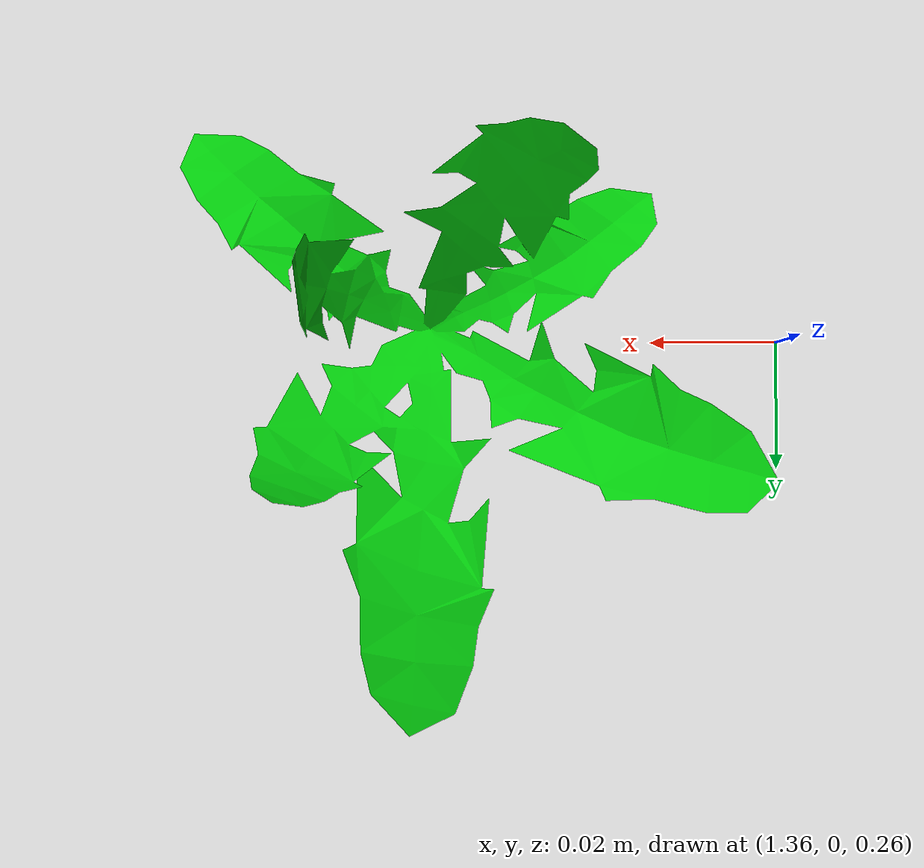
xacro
<robot name="robot">
  <link name="rowcrop_Small Plant.005_link">
    <inertial>
      <origin xyz="0 0 0" rpy="0 0 0" />
      <mass value="1" />
      <inertia ixx="1" ixy="0" ixz="0" iyy="1" iyz="0" izz="1" />
    </inertial>
    <visual>
      <origin xyz="0 0 0" rpy="0 0 0" />
      <geometry>
        <mesh filename="package://robot_description/meshes/rowcrop_Small Plant.005.dae" />
      </geometry>
    </visual>
    <collision>
      <origin xyz="0 0 0" rpy="0 0 0" />
      <geometry>
        <mesh filename="package://robot_description/meshes/rowcrop_Small Plant.005.dae" />
      </geometry>
    </collision>
  </link>

  <gazebo> <static>true</static></gazebo>
</robot>
